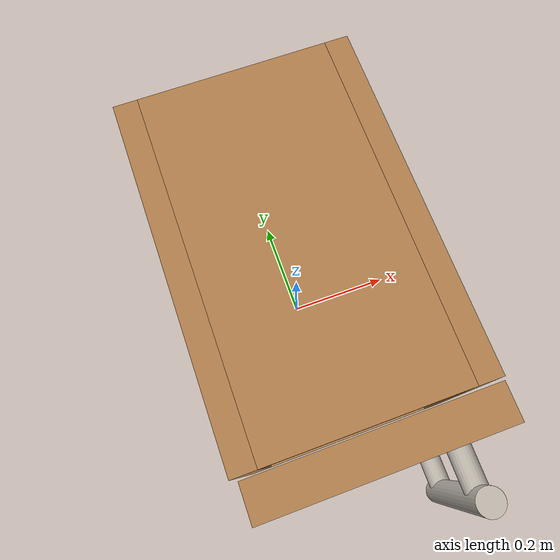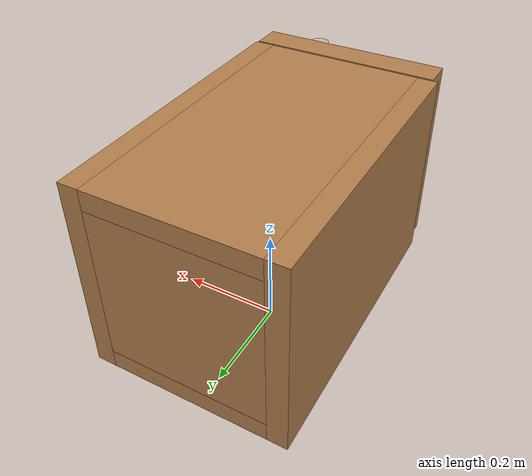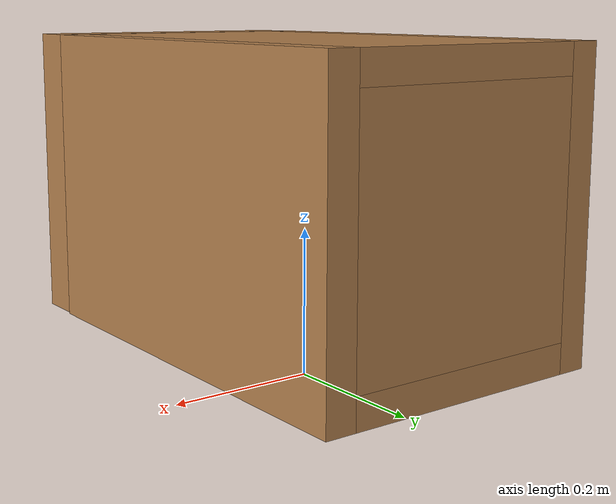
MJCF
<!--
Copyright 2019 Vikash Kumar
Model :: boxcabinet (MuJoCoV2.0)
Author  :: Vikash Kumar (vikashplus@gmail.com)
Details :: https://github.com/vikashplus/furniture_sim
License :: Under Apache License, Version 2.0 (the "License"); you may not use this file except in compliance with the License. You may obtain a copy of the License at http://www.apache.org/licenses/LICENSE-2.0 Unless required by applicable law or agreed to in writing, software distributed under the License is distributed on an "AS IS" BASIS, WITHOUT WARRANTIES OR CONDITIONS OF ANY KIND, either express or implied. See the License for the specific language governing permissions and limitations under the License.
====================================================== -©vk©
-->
<mujoco model="box cabinet">
    <compiler angle="radian"/>
    <include file="../furniture_sim/boxcabinet/boxcabinet_assets.xml"/>

    <worldbody>

        <body pos="0 0 .25">
            <include file="../furniture_sim/boxcabinet/boxcabinet_body.xml"/>
        </body>

    </worldbody>

</mujoco>

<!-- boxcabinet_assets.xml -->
<mujocoinclude>

    <compiler inertiafromgeom="auto" inertiagrouprange="4 4" angle="radian"/>

    <asset>
        <texture name="T_hinge_wood" type="cube" height="1" width="1" file="../furniture_sim/common/textures/wood1.png"/>
        <texture name="T_hinge_metal" type="cube" height="1" width="1" file="../furniture_sim/common/textures/metal0.png"/>

        <material name="M_hinge_wood" texture="T_hinge_wood" texrepeat="3 3" reflectance="0.7" shininess=".4" texuniform="false"/>
        <material name="M_hinge_metal" texture="T_hinge_metal" texrepeat="3 3" reflectance="0.7" shininess=".4" texuniform="false"/>
        <material name="M_hinge_blue" texture="T_hinge_wood" rgba="1 1 1 1" reflectance="0.7" shininess=".4" texuniform="false"/>
        <material name="hinge_collision_blue" rgba="0.3 0.3 1.0 0.5" shininess="0" specular="0"/>
    </asset>

    <default>
        <default class="boxcabinet">
            <joint damping="2" frictionloss="2" armature=".01" limited="true"/>
            <geom conaffinity="0" contype="0" group="1" material="M_hinge_wood" type="mesh"/>
            <default class="box_collision">
                <geom conaffinity="1" condim="3" contype="0" group="4" margin="0.001" material="hinge_collision_blue" solimp=".8 .9 .01" solref=".02 1"/>
            </default>
        </default>
    </default>

    <sensor>
        <jointpos name="boxdoorhinge" joint="boxdoorhinge"/>
    </sensor>

</mujocoinclude>

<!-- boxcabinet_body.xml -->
<mujocoinclude>
    <body name="hingecab" childclass="boxcabinet" pos="0. 0 0">
        <geom material="M_hinge_blue" pos="0.18 0 0" size="0.02 0.3 0.2" type="box"/>
        <geom material="M_hinge_blue" pos="-.18 0 0" size="0.02 0.3 0.2" type="box"/>
        <geom material="M_hinge_blue" pos="0.00 0 0.18" size="0.16 0.3 0.02" type="box"/>
        <geom material="M_hinge_blue" pos="0.00 0 -0.18" size="0.16 0.3 0.02" type="box"/>
        <geom material="M_hinge_blue" pos="0.00 0.28 0" size="0.16 0.02 0.16" type="box"/>

        <geom class="box_collision" pos="0.18 0 0" size="0.02 0.3 0.2" type="box" mass=".3"/>
        <geom class="box_collision" pos="-.18 0 0" size="0.02 0.3 0.2" type="box" mass=".2"/>
        <geom class="box_collision" pos="0.00 0 0.18" size="0.16 0.3 0.02" type="box" mass=".2"/>
        <geom class="box_collision" pos="0.00 0 -0.18" size="0.16 0.3 0.02" type="box" mass=".2"/>
        <geom class="box_collision" pos="0.00 0.28 0" size="0.16 0.02 0.16" type="box" mass=".2"/>

        <body name="hingedoor" pos="-0.18 -0.32 0">
            <joint axis="0 0 1" name="boxdoorhinge" range="-1.57 0"/>
            <geom material="M_hinge_metal" pos="0.302 -0.128 0" size="0.022 0.16" type="cylinder"/>
            <geom material="M_hinge_metal" pos="0.302 -0.061 0.114" euler="1.57 0 0" size="0.019 0.053 0.02" type="cylinder"/>
            <geom material="M_hinge_metal" pos="0.302 -0.061 -0.114" euler="1.57 0 0" size="0.019 0.053 0.02" type="cylinder"/>
            <geom material="M_hinge_blue" pos="0.184 -.015 0" size="0.193 0.03 0.2" type="box"/>

            <geom class="box_collision" pos="0.184 -.015 0" size="0.193 0.03 0.2" type="box" mass=".2"/>
            <geom class="box_collision" pos="0.302 -0.128 0" size="0.022 0.16" type="cylinder" mass=".1"/>
            <geom class="box_collision" pos="0.302 -0.061 0.114" euler="1.57 0 0" size="0.019 0.053 0.02" type="cylinder" mass=".02"/>
            <geom class="box_collision" pos="0.302 -0.061 -0.114" euler="1.57 0 0" size="0.019 0.053 0.02" type="cylinder" mass=".02"/>
            <site type="sphere" name="boxdoor_site" pos="0.302 -0.128 0" size=".01" group="3" rgba="1 0 0 1"/>
        </body>
    </body>
</mujocoinclude>
